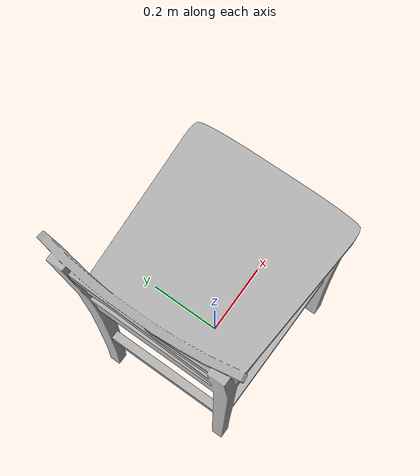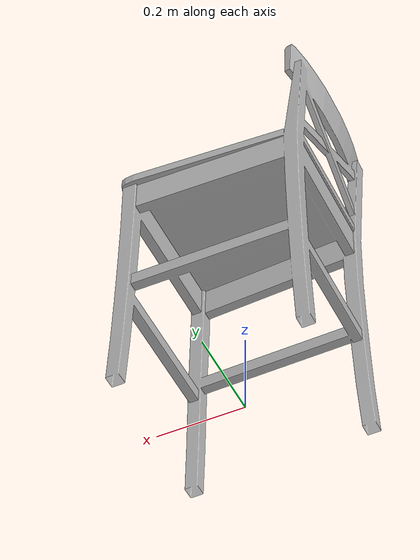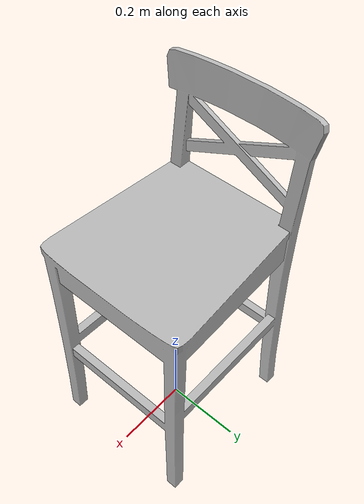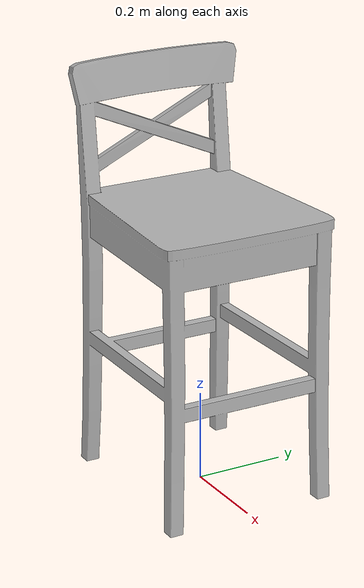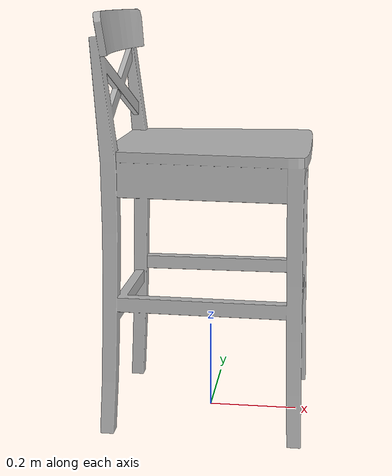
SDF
<?xml version='1.0'?>
<sdf version='1.4'>
  <model name='s__424'>
    <pose>0 0 0 0 0 0</pose>
    <static>true</static>
    <link name='link'>
      <collision name='collision'>
        <pose>0 0 0 0 0 0</pose>
        <geometry>
          <box>
            <size>0.45 0.4 2</size>
          </box>
        </geometry>
      </collision>
      <visual name='visual'>
        <pose>0 0 0 0 0 0</pose>
        <geometry>
          <mesh><uri>model://s__424/s__424.dae</uri></mesh>
        </geometry>
      </visual>
    </link>
  </model>
</sdf>
